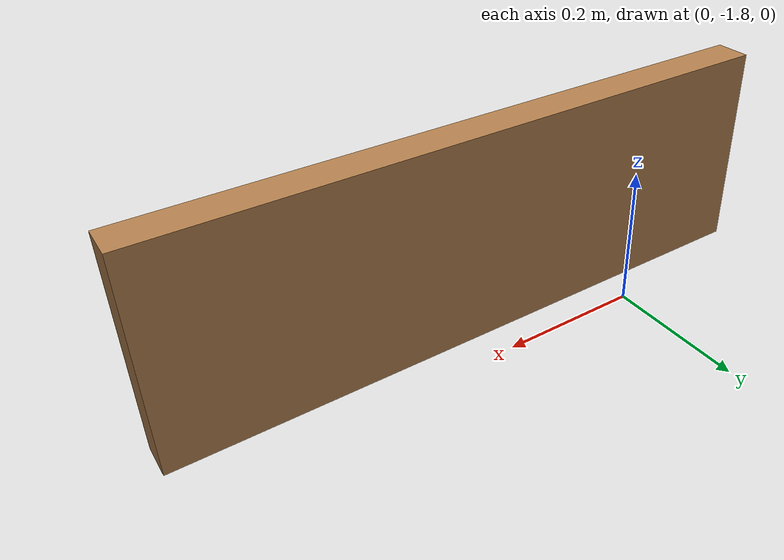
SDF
<?xml version='1.0'?>
<sdf version='1.6'>
  <model name='wall09'>
    <pose frame=''>0.205 -0.9475 0 0 -0 0</pose>
    <link name='Wall_0'>
      <collision name='Wall_0_Collision'>
        <geometry>
          <box>
            <size>0.9 0.05 0.3</size>
          </box>
        </geometry>
        <pose frame=''>0 0 0.15 0 -0 0</pose>
      </collision>
      <visual name='Wall_0_Visual'>
        <pose frame=''>0 0 0.15 0 -0 0</pose>
        <geometry>
          <box>
            <size>0.9 0.05 0.3</size>
          </box>
        </geometry>
        <material>
          <script>
            <uri>file://media/materials/scripts/gazebo.material</uri>
            <name>Gazebo/Wood</name>
          </script>
          <ambient>1 1 1 1</ambient>
        </material>
        <meta>
          <layer>0</layer>
        </meta>
      </visual>
      <pose frame=''>0 -0.9225 0 0 -0 0</pose>
    </link>
    <static>1</static>
  </model>
</sdf>
